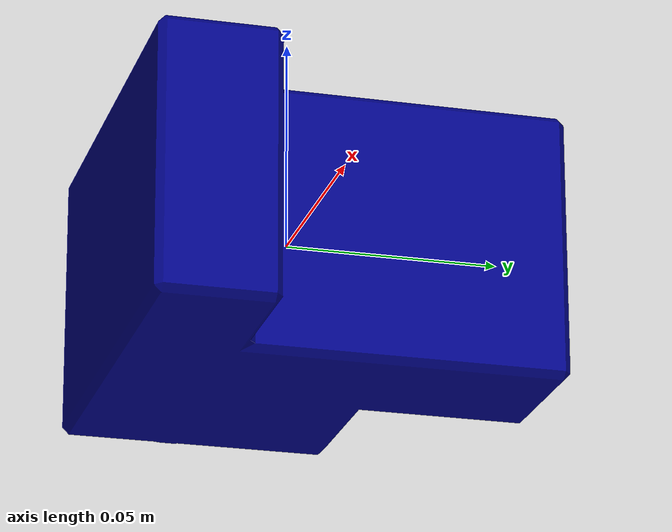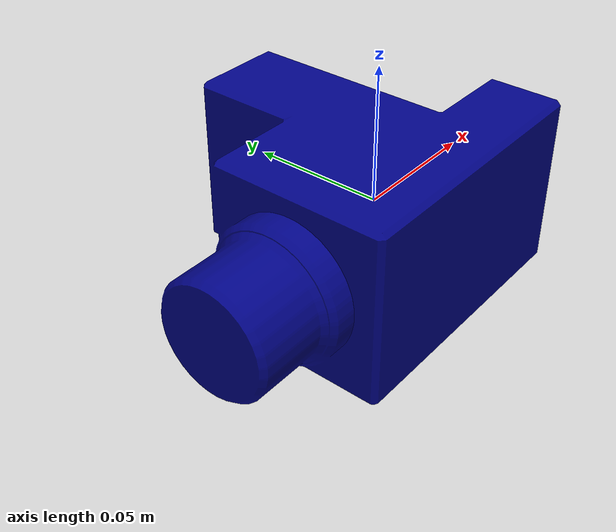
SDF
<?xml version="1.0" ?>
<sdf version="1.6">
  <model name="assembly_sensor_blue_ariac">
    <static>false</static>
    <link name="link">
      <inertial>
        <pose>-0.015 -0.01 0.0 0 0 0</pose>
        <mass>0.5</mass>
        <inertia>
          <ixx>0.001</ixx>
          <ixy>0</ixy>
          <ixz>0</ixz>
          <iyy>0.001</iyy>
          <iyz>0</iyz>
          <izz>0.001</izz>
        </inertia>
      </inertial>
      <collision name='collision'>
        <pose frame=''>0 0 0 0 0 0</pose>
        <geometry>
            <mesh>
            <uri>model://assembly_sensor_blue_ariac/meshes/sensor_collision.dae</uri>
            <scale>1.05 0.95 0.95</scale>
            </mesh>
          </geometry>
        <surface>
          <contact>
            <ode>
              <max_vel>0.1</max_vel>
              <min_depth>0.001</min_depth>
            </ode>
          </contact>
        </surface>
      </collision>
      <visual name="visual">
         <geometry>
           <mesh>
             <uri>model://assembly_sensor_blue_ariac/meshes/assembly_sensor_part_blue.dae</uri>
             <scale>1.05 0.95 0.95</scale>
           </mesh>
         </geometry>
       </visual>
    </link>
  </model>
</sdf>
